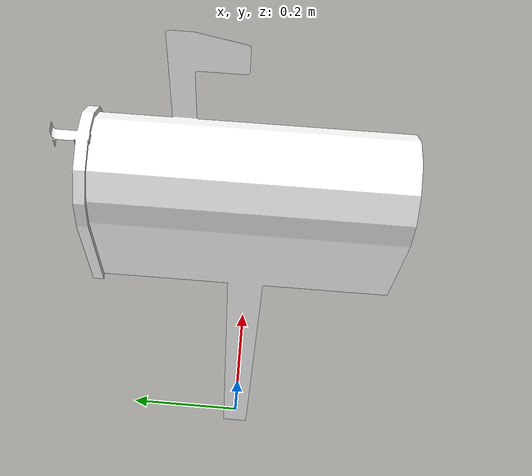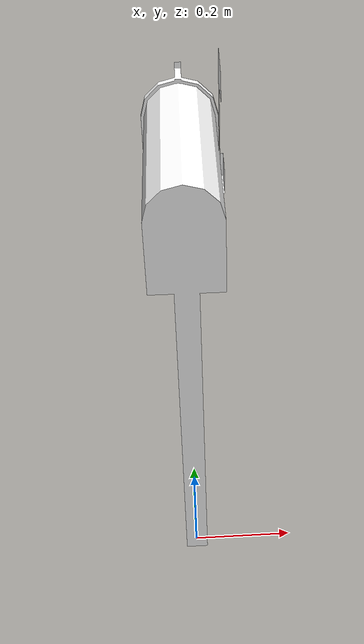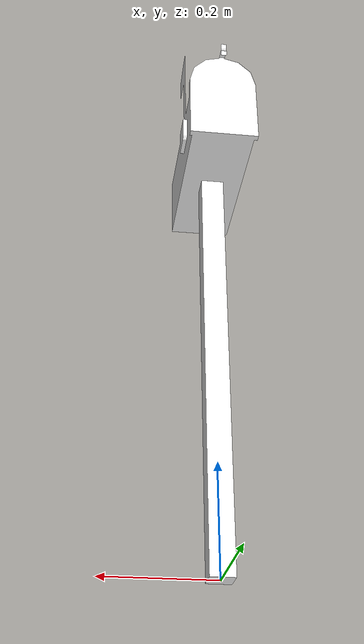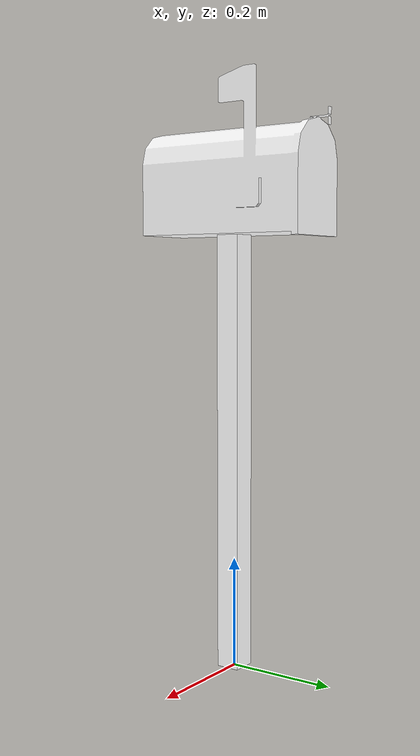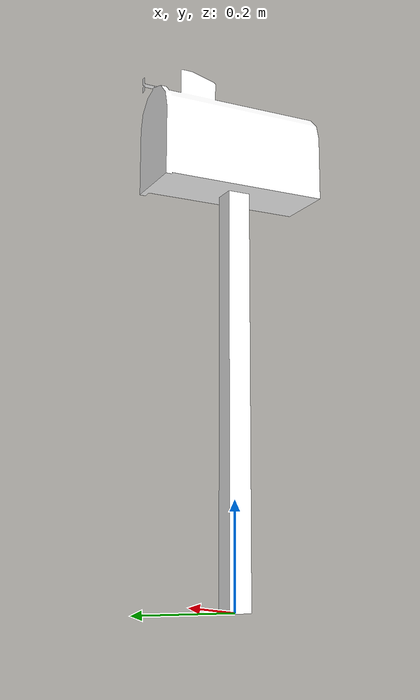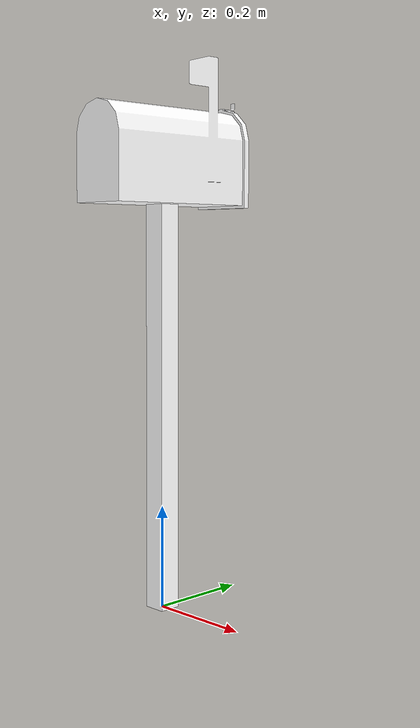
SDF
<?xml version="1.0" ?>
<sdf version="1.5">
  <model name="Mailbox">
    <link name="link">
      <collision name="collision">
        <geometry>
          <mesh>
            <uri>model://mailbox/meshes/mailbox.dae</uri>
          </mesh>
        </geometry>
      </collision>
      <visual name="visual">
        <geometry>
          <mesh>
            <uri>model://mailbox/meshes/mailbox.dae</uri>
          </mesh>
        </geometry>
        <material>
          <ambient>1 1 1 1</ambient>
          <diffuse>1 1 1 1</diffuse>
          <specular>0.2 0.2 0.2 1</specular>
          <emissive>0 0 0 1</emissive>
          <script>
            <uri>model://mailbox/materials/scripts</uri>
            <uri>model://mailbox/materials/textures</uri>
            <name>Mailbox/Diffuse</name>
          </script>
          <pbr>
            <metal>
              <albedo_map>model://mailbox/materials/textures/Mailbox_Diffuse.png</albedo_map>
              <metalness_map>model://mailbox/materials/textures/Mailbox_Spec.png</metalness_map>
            </metal>
          </pbr>
        </material>
      </visual>
    </link>
  </model>
</sdf>
